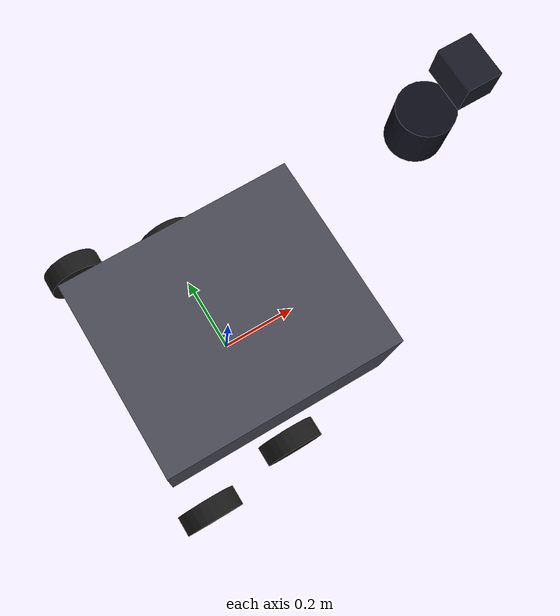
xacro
<?xml version="1.0"?>
<robot xmlns:xacro="http://ros.org/wiki/xacro" name="factory_robot">

  <!-- ============ 基础参数 ============ -->
  <xacro:property name="wheel_r" value="0.075"/>
  <xacro:property name="wheel_w" value="0.05"/>

  <!-- ============ base_link：差速底盘 ============ -->
  <link name="base_link">
    <visual>
      <origin xyz="0 0 0.175" rpy="0 0 0"/>
      <geometry><box size="0.6 0.5 0.25"/></geometry>
      <material name="mat1"><color rgba="0.3 0.3 0.35 1.0"/></material>
    </visual>
    <collision>
      <origin xyz="0 0 0.175" rpy="0 0 0"/>
      <geometry><box size="0.6 0.5 0.25"/></geometry>
    </collision>
    <inertial>
      <origin xyz="0 0 0.175"/>
      <mass value="18.0"/>
      <inertia ixx="0.55" ixy="0" ixz="0" iyy="0.71" iyz="0" izz="0.43"/>
    </inertial>
  </link>

  <!-- ============ 驱动轮 x2 ============ -->
  <xacro:macro name="drive_wheel" params="prefix y_reflect">
    <link name="${prefix}_wheel_link">
      <visual>
        <origin xyz="0 0 0" rpy="0 0 0"/>
        <geometry><cylinder radius="${wheel_r}" length="${wheel_w}"/></geometry>
        <material name="mat2"><color rgba="0.1 0.1 0.1 1.0"/></material>
      </visual>
      <collision>
        <origin xyz="0 0 0" rpy="0 0 0"/>
        <geometry><cylinder radius="${wheel_r}" length="${wheel_w}"/></geometry>
      </collision>
      <inertial>
        <mass value="0.6"/>
        <inertia ixx="0.0011" ixy="0" ixz="0" iyy="0.0011" iyz="0" izz="0.0017"/>
      </inertial>
    </link>
    <joint name="${prefix}_wheel_joint" type="continuous">
      <parent link="base_link"/>
      <child link="${prefix}_wheel_link"/>
      <origin xyz="0 ${y_reflect*0.3} ${wheel_r}" rpy="${-pi/2} 0 0"/>
      <axis xyz="0 0 1"/>
    </joint>
  </xacro:macro>
  <xacro:drive_wheel prefix="left" y_reflect="1"/>
  <xacro:drive_wheel prefix="right" y_reflect="-1"/>

  <!-- ============ 后部两个从动轮：转向关节(绕z自由)+自由轮(绕y自由)，
       差速车4轮标准结构；离地留 3mm 间隙保证驱动轮承重不打滑 ============ -->
  <xacro:macro name="rear_caster_wheel" params="prefix y_reflect">
    <link name="${prefix}_steer_link">
      <inertial>
        <mass value="0.1"/>
        <inertia ixx="0.0002" ixy="0" ixz="0" iyy="0.0002" iyz="0" izz="0.0002"/>
      </inertial>
    </link>
    <joint name="${prefix}_steer_joint" type="revolute">
      <parent link="base_link"/>
      <child link="${prefix}_steer_link"/>
      <origin xyz="-0.22 ${y_reflect*0.345} 0.078" rpy="0 0 0"/>
      <axis xyz="0 0 1"/>
      <limit effort="1.0" velocity="4.0" lower="-1.4" upper="1.4"/>
      <dynamics damping="0.3"/>
    </joint>
    <link name="${prefix}_wheel_link">
      <visual>
        <geometry><cylinder radius="${wheel_r}" length="${wheel_w}"/></geometry>
        <material name="${prefix}_wheel_mat"><color rgba="0.1 0.1 0.1 1.0"/></material>
      </visual>
      <collision>
        <geometry><cylinder radius="${wheel_r}" length="${wheel_w}"/></geometry>
      </collision>
      <inertial>
        <mass value="0.4"/>
        <inertia ixx="0.0005" ixy="0" ixz="0" iyy="0.0005" iyz="0" izz="0.0011"/>
      </inertial>
    </link>
    <joint name="${prefix}_wheel_joint" type="continuous">
      <parent link="${prefix}_steer_link"/>
      <child link="${prefix}_wheel_link"/>
      <origin xyz="-0.03 0 0" rpy="${-pi/2} 0 0"/>
      <axis xyz="0 0 1"/>
    </joint>
    <gazebo reference="${prefix}_wheel_link">
      <mu1>0.5</mu1>
      <mu2>0.5</mu2>
      <kp>100000.0</kp>
      <kd>500.0</kd>
    </gazebo>
  </xacro:macro>
  <xacro:rear_caster_wheel prefix="rear_left" y_reflect="1"/>
  <xacro:rear_caster_wheel prefix="rear_right" y_reflect="-1"/>

  <!-- ============ 3D LiDAR（x=0.35, z=0.8，水平安装） ============ -->
  <link name="lidar_link">
    <visual>
      <geometry><cylinder radius="0.05" length="0.08"/></geometry>
      <material name="mat4"><color rgba="0.05 0.05 0.1 1.0"/></material>
    </visual>
    <collision>
      <geometry><cylinder radius="0.05" length="0.08"/></geometry>
    </collision>
    <inertial>
      <mass value="0.5"/>
      <inertia ixx="0.0006" ixy="0" ixz="0" iyy="0.0006" iyz="0" izz="0.0004"/>
    </inertial>
  </link>
  <joint name="lidar_joint" type="fixed">
    <parent link="base_link"/>
    <child link="lidar_link"/>
    <origin xyz="0.35 0 0.8" rpy="0 0 0"/>
  </joint>

  <gazebo reference="lidar_link">
    <!-- 31 线 -15..+15 度（含 0 度水平线），供 pointcloud_to_laserscan 切 ±0.05m 得到完整 2D 扫描 -->
    <sensor name="lidar" type="ray">
      <pose>0 0 0 0 0 0</pose>
      <always_on>true</always_on>
      <visualize>false</visualize>
      <update_rate>10.0</update_rate>
      <ray>
        <scan>
          <horizontal>
            <samples>180</samples>
            <resolution>1.0</resolution>
            <min_angle>-3.14159</min_angle>
            <max_angle>3.14159</max_angle>
          </horizontal>
          <vertical>
            <samples>3</samples>
            <resolution>1.0</resolution>
            <min_angle>-0.2618</min_angle>
            <max_angle>0.2618</max_angle>
          </vertical>
        </scan>
        <range>
          <min>0.2</min>
          <max>30.0</max>
          <resolution>0.01</resolution>
        </range>
        <noise>
          <type>gaussian</type>
          <mean>0.0</mean>
          <stddev>0.02</stddev>
        </noise>
      </ray>
      <plugin name="lidar_ros" filename="libgazebo_ros_ray_sensor.so">
        <ros>
          <remapping>~/out:=/lidar/points_raw</remapping>
        </ros>
        <output_type>sensor_msgs/PointCloud2</output_type>
        <frame_name>lidar_link</frame_name>
      </plugin>
    </sensor>
  </gazebo>

  <!-- ============ RGB 相机（x=0.4, z=0.9，俯视 10 度） ============ -->
  <link name="camera_link">
    <visual>
      <geometry><box size="0.06 0.08 0.05"/></geometry>
      <material name="mat5"><color rgba="0.1 0.1 0.15 1.0"/></material>
    </visual>
    <inertial>
      <mass value="0.1"/>
      <inertia ixx="0.00001" ixy="0" ixz="0" iyy="0.00001" iyz="0" izz="0.00001"/>
    </inertial>
  </link>
  <joint name="camera_joint" type="fixed">
    <parent link="base_link"/>
    <child link="camera_link"/>
    <origin xyz="0.4 0 0.9" rpy="0 0 0"/>
  </joint>

  <gazebo reference="camera_link">
    <sensor name="camera" type="camera">
      <!-- gazebo 相机光轴沿 sensor +x，pitch=+0.1745 rad 即向下俯视 10 度 -->
      <pose>0 0 0 0 0.1745 0</pose>
      <always_on>true</always_on>
      <update_rate>15.0</update_rate>
      <camera>
        <!-- hfov = 2*atan(320/500) -> fx=fy=500, cx=320, cy=192 -->
        <horizontal_fov>1.1408</horizontal_fov>
        <image>
          <width>640</width>
          <height>384</height>
          <format>R8G8B8</format>
        </image>
        <clip>
          <near>0.05</near>
          <far>30.0</far>
        </clip>
      </camera>
      <plugin name="camera_ros" filename="libgazebo_ros_camera.so">
        <ros>
          <remapping>~/image_raw:=/camera/image_raw</remapping>
          <remapping>~/camera_info:=/camera/camera_info</remapping>
        </ros>
        <camera_name>camera</camera_name>
        <frame_name>camera_link</frame_name>
      </plugin>
    </sensor>
  </gazebo>

  <!-- ============ IMU ============ -->
  <link name="imu_link">
    <inertial>
      <mass value="0.05"/>
      <inertia ixx="0.000001" ixy="0" ixz="0" iyy="0.000001" iyz="0" izz="0.000001"/>
    </inertial>
  </link>
  <joint name="imu_joint" type="fixed">
    <parent link="base_link"/>
    <child link="imu_link"/>
    <origin xyz="0 0 0.5" rpy="0 0 0"/>
  </joint>

  <gazebo reference="imu_link">
    <sensor name="imu" type="imu">
      <always_on>true</always_on>
      <update_rate>50.0</update_rate>
      <imu>
        <angular_velocity>
          <x><noise type="gaussian"><mean>0.0</mean><stddev>2e-4</stddev></noise></x>
          <y><noise type="gaussian"><mean>0.0</mean><stddev>2e-4</stddev></noise></y>
          <z><noise type="gaussian"><mean>0.0</mean><stddev>2e-4</stddev></noise></z>
        </angular_velocity>
        <linear_acceleration>
          <x><noise type="gaussian"><mean>0.0</mean><stddev>2e-2</stddev></noise></x>
          <y><noise type="gaussian"><mean>0.0</mean><stddev>2e-2</stddev></noise></y>
          <z><noise type="gaussian"><mean>0.0</mean><stddev>2e-2</stddev></noise></z>
        </linear_acceleration>
      </imu>
      <plugin name="imu_ros" filename="libgazebo_ros_imu_sensor.so">
        <ros>
          <remapping>~/out:=/imu</remapping>
        </ros>
        <frame_name>imu_link</frame_name>
      </plugin>
    </sensor>
  </gazebo>

  <!-- ============ 关节状态发布（从物理仿真读全部活动关节 -> /joint_states，
       robot_state_publisher 据此发布轮子/转向 TF，rviz RobotModel 不再报缺变换） ============ -->
  <gazebo>
    <plugin name="joint_state_publisher" filename="libgazebo_ros_joint_state_publisher.so">
      <ros>
        <remapping>~/out:=/joint_states</remapping>
      </ros>
      <update_rate>30.0</update_rate>
      <joint_name>left_wheel_joint</joint_name>
      <joint_name>right_wheel_joint</joint_name>
      <joint_name>rear_left_steer_joint</joint_name>
      <joint_name>rear_left_wheel_joint</joint_name>
      <joint_name>rear_right_steer_joint</joint_name>
      <joint_name>rear_right_wheel_joint</joint_name>
    </plugin>
  </gazebo>

  <!-- ============ 差速驱动插件 ============ -->
  <gazebo>
    <plugin name="diff_drive" filename="libgazebo_ros_diff_drive.so">
      <update_rate>30.0</update_rate>
      <left_joint>left_wheel_joint</left_joint>
      <right_joint>right_wheel_joint</right_joint>
      <wheel_separation>0.6</wheel_separation>
      <wheel_diameter>0.15</wheel_diameter>
      <max_wheel_torque>20.0</max_wheel_torque>
      <max_wheel_acceleration>1.5</max_wheel_acceleration>
      <publish_odom>true</publish_odom>
      <publish_odom_tf>false</publish_odom_tf>
      <covariance_x>0.05</covariance_x>
      <covariance_y>0.05</covariance_y>
      <covariance_yaw>0.02</covariance_yaw>
      <publish_wheel_tf>false</publish_wheel_tf>
      <publish_joint_state>false</publish_joint_state>
      <odometry_frame>odom</odometry_frame>
      <robot_base_frame>base_link</robot_base_frame>
    </plugin>
  </gazebo>

</robot>
